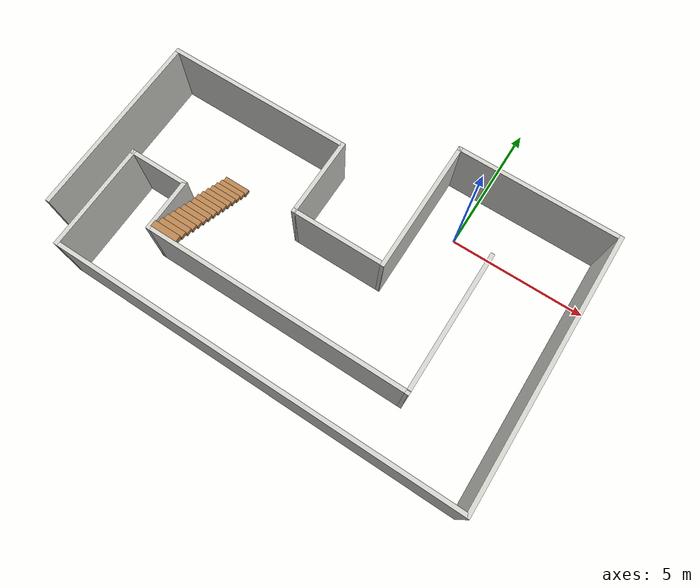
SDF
<?xml version='1.0'?>
<sdf version='1.7'>
  <model name='QD_world'>
    <pose>-3.49552 -3.0284 0 0 -0 0</pose>
    <link name='Stairs_2'>
      <visual name='Stairs_2_Visual_0'>
        <pose>-4.19457 0.527954 0.083333 0 -0 0</pose>
        <geometry>
          <box>
            <size>1 0.233333 0.166667</size>
          </box>
        </geometry>
        <material>
          <script>
            <uri>file://media/materials/scripts/gazebo.material</uri>
            <name>Gazebo/Wood</name>
          </script>
          <ambient>1 1 1 1</ambient>
        </material>
        <meta>
          <layer>0</layer>
        </meta>
      </visual>
      <collision name='Stairs_2_Collision_0'>
        <geometry>
          <box>
            <size>1 0.233333 0.166667</size>
          </box>
        </geometry>
        <pose>-4.19457 0.527954 0.083333 0 -0 0</pose>
      </collision>
      <visual name='Stairs_2_Visual_1'>
        <pose>-4.19457 0.294621 0.25 0 -0 0</pose>
        <geometry>
          <box>
            <size>1 0.233333 0.166667</size>
          </box>
        </geometry>
        <material>
          <script>
            <uri>file://media/materials/scripts/gazebo.material</uri>
            <name>Gazebo/Wood</name>
          </script>
          <ambient>1 1 1 1</ambient>
        </material>
        <meta>
          <layer>0</layer>
        </meta>
      </visual>
      <collision name='Stairs_2_Collision_1'>
        <geometry>
          <box>
            <size>1 0.233333 0.166667</size>
          </box>
        </geometry>
        <pose>-4.19457 0.294621 0.25 0 -0 0</pose>
      </collision>
      <visual name='Stairs_2_Visual_2'>
        <pose>-4.19457 0.061288 0.416667 0 -0 0</pose>
        <geometry>
          <box>
            <size>1 0.233333 0.166667</size>
          </box>
        </geometry>
        <material>
          <script>
            <uri>file://media/materials/scripts/gazebo.material</uri>
            <name>Gazebo/Wood</name>
          </script>
          <ambient>1 1 1 1</ambient>
        </material>
        <meta>
          <layer>0</layer>
        </meta>
      </visual>
      <collision name='Stairs_2_Collision_2'>
        <geometry>
          <box>
            <size>1 0.233333 0.166667</size>
          </box>
        </geometry>
        <pose>-4.19457 0.061288 0.416667 0 -0 0</pose>
      </collision>
      <visual name='Stairs_2_Visual_3'>
        <pose>-4.19457 -0.172045 0.583333 0 -0 0</pose>
        <geometry>
          <box>
            <size>1 0.233333 0.166667</size>
          </box>
        </geometry>
        <material>
          <script>
            <uri>file://media/materials/scripts/gazebo.material</uri>
            <name>Gazebo/Wood</name>
          </script>
          <ambient>1 1 1 1</ambient>
        </material>
        <meta>
          <layer>0</layer>
        </meta>
      </visual>
      <collision name='Stairs_2_Collision_3'>
        <geometry>
          <box>
            <size>1 0.233333 0.166667</size>
          </box>
        </geometry>
        <pose>-4.19457 -0.172045 0.583333 0 -0 0</pose>
      </collision>
      <visual name='Stairs_2_Visual_4'>
        <pose>-4.19457 -0.405379 0.75 0 -0 0</pose>
        <geometry>
          <box>
            <size>1 0.233333 0.166667</size>
          </box>
        </geometry>
        <material>
          <script>
            <uri>file://media/materials/scripts/gazebo.material</uri>
            <name>Gazebo/Wood</name>
          </script>
          <ambient>1 1 1 1</ambient>
        </material>
        <meta>
          <layer>0</layer>
        </meta>
      </visual>
      <collision name='Stairs_2_Collision_4'>
        <geometry>
          <box>
            <size>1 0.233333 0.166667</size>
          </box>
        </geometry>
        <pose>-4.19457 -0.405379 0.75 0 -0 0</pose>
      </collision>
      <visual name='Stairs_2_Visual_5'>
        <pose>-4.19457 -0.638712 0.916667 0 -0 0</pose>
        <geometry>
          <box>
            <size>1 0.233333 0.166667</size>
          </box>
        </geometry>
        <material>
          <script>
            <uri>file://media/materials/scripts/gazebo.material</uri>
            <name>Gazebo/Wood</name>
          </script>
          <ambient>1 1 1 1</ambient>
        </material>
        <meta>
          <layer>0</layer>
        </meta>
      </visual>
      <collision name='Stairs_2_Collision_5'>
        <geometry>
          <box>
            <size>1 0.233333 0.166667</size>
          </box>
        </geometry>
        <pose>-4.19457 -0.638712 0.916667 0 -0 0</pose>
      </collision>
      <visual name='Stairs_2_Visual_6'>
        <pose>-4.19457 -0.872046 1.08333 0 -0 0</pose>
        <geometry>
          <box>
            <size>1 0.233333 0.166667</size>
          </box>
        </geometry>
        <material>
          <script>
            <uri>file://media/materials/scripts/gazebo.material</uri>
            <name>Gazebo/Wood</name>
          </script>
          <ambient>1 1 1 1</ambient>
        </material>
        <meta>
          <layer>0</layer>
        </meta>
      </visual>
      <collision name='Stairs_2_Collision_6'>
        <geometry>
          <box>
            <size>1 0.233333 0.166667</size>
          </box>
        </geometry>
        <pose>-4.19457 -0.872046 1.08333 0 -0 0</pose>
      </collision>
      <visual name='Stairs_2_Visual_7'>
        <pose>-4.19457 -1.10538 1.25 0 -0 0</pose>
        <geometry>
          <box>
            <size>1 0.233333 0.166667</size>
          </box>
        </geometry>
        <material>
          <script>
            <uri>file://media/materials/scripts/gazebo.material</uri>
            <name>Gazebo/Wood</name>
          </script>
          <ambient>1 1 1 1</ambient>
        </material>
        <meta>
          <layer>0</layer>
        </meta>
      </visual>
      <collision name='Stairs_2_Collision_7'>
        <geometry>
          <box>
            <size>1 0.233333 0.166667</size>
          </box>
        </geometry>
        <pose>-4.19457 -1.10538 1.25 0 -0 0</pose>
      </collision>
      <visual name='Stairs_2_Visual_8'>
        <pose>-4.19457 -1.33871 1.41667 0 -0 0</pose>
        <geometry>
          <box>
            <size>1 0.233333 0.166667</size>
          </box>
        </geometry>
        <material>
          <script>
            <uri>file://media/materials/scripts/gazebo.material</uri>
            <name>Gazebo/Wood</name>
          </script>
          <ambient>1 1 1 1</ambient>
        </material>
        <meta>
          <layer>0</layer>
        </meta>
      </visual>
      <collision name='Stairs_2_Collision_8'>
        <geometry>
          <box>
            <size>1 0.233333 0.166667</size>
          </box>
        </geometry>
        <pose>-4.19457 -1.33871 1.41667 0 -0 0</pose>
      </collision>
      <visual name='Stairs_2_Visual_9'>
        <pose>-4.19457 -1.57205 1.58333 0 -0 0</pose>
        <geometry>
          <box>
            <size>1 0.233333 0.166667</size>
          </box>
        </geometry>
        <material>
          <script>
            <uri>file://media/materials/scripts/gazebo.material</uri>
            <name>Gazebo/Wood</name>
          </script>
          <ambient>1 1 1 1</ambient>
        </material>
        <meta>
          <layer>0</layer>
        </meta>
      </visual>
      <collision name='Stairs_2_Collision_9'>
        <geometry>
          <box>
            <size>1 0.233333 0.166667</size>
          </box>
        </geometry>
        <pose>-4.19457 -1.57205 1.58333 0 -0 0</pose>
      </collision>
      <visual name='Stairs_2_Visual_10'>
        <pose>-4.19457 -1.80538 1.75 0 -0 0</pose>
        <geometry>
          <box>
            <size>1 0.233333 0.166667</size>
          </box>
        </geometry>
        <material>
          <script>
            <uri>file://media/materials/scripts/gazebo.material</uri>
            <name>Gazebo/Wood</name>
          </script>
          <ambient>1 1 1 1</ambient>
        </material>
        <meta>
          <layer>0</layer>
        </meta>
      </visual>
      <collision name='Stairs_2_Collision_10'>
        <geometry>
          <box>
            <size>1 0.233333 0.166667</size>
          </box>
        </geometry>
        <pose>-4.19457 -1.80538 1.75 0 -0 0</pose>
      </collision>
      <visual name='Stairs_2_Visual_11'>
        <pose>-4.19457 -2.03871 1.91667 0 -0 0</pose>
        <geometry>
          <box>
            <size>1 0.233333 0.166667</size>
          </box>
        </geometry>
        <material>
          <script>
            <uri>file://media/materials/scripts/gazebo.material</uri>
            <name>Gazebo/Wood</name>
          </script>
          <ambient>1 1 1 1</ambient>
        </material>
        <meta>
          <layer>0</layer>
        </meta>
      </visual>
      <collision name='Stairs_2_Collision_11'>
        <geometry>
          <box>
            <size>1 0.233333 0.166667</size>
          </box>
        </geometry>
        <pose>-4.19457 -2.03871 1.91667 0 -0 0</pose>
      </collision>
      <visual name='Stairs_2_Visual_12'>
        <pose>-4.19457 -2.27204 2.08333 0 -0 0</pose>
        <geometry>
          <box>
            <size>1 0.233333 0.166667</size>
          </box>
        </geometry>
        <material>
          <script>
            <uri>file://media/materials/scripts/gazebo.material</uri>
            <name>Gazebo/Wood</name>
          </script>
          <ambient>1 1 1 1</ambient>
        </material>
        <meta>
          <layer>0</layer>
        </meta>
      </visual>
      <collision name='Stairs_2_Collision_12'>
        <geometry>
          <box>
            <size>1 0.233333 0.166667</size>
          </box>
        </geometry>
        <pose>-4.19457 -2.27204 2.08333 0 -0 0</pose>
      </collision>
      <visual name='Stairs_2_Visual_13'>
        <pose>-4.19457 -2.50538 2.25 0 -0 0</pose>
        <geometry>
          <box>
            <size>1 0.233333 0.166667</size>
          </box>
        </geometry>
        <material>
          <script>
            <uri>file://media/materials/scripts/gazebo.material</uri>
            <name>Gazebo/Wood</name>
          </script>
          <ambient>1 1 1 1</ambient>
        </material>
        <meta>
          <layer>0</layer>
        </meta>
      </visual>
      <collision name='Stairs_2_Collision_13'>
        <geometry>
          <box>
            <size>1 0.233333 0.166667</size>
          </box>
        </geometry>
        <pose>-4.19457 -2.50538 2.25 0 -0 0</pose>
      </collision>
      <visual name='Stairs_2_Visual_14'>
        <pose>-4.19457 -2.73871 2.41667 0 -0 0</pose>
        <geometry>
          <box>
            <size>1 0.233333 0.166667</size>
          </box>
        </geometry>
        <material>
          <script>
            <uri>file://media/materials/scripts/gazebo.material</uri>
            <name>Gazebo/Wood</name>
          </script>
          <ambient>1 1 1 1</ambient>
        </material>
        <meta>
          <layer>0</layer>
        </meta>
      </visual>
      <collision name='Stairs_2_Collision_14'>
        <geometry>
          <box>
            <size>1 0.233333 0.166667</size>
          </box>
        </geometry>
        <pose>-4.19457 -2.73871 2.41667 0 -0 0</pose>
      </collision>
    </link>
    <link name='Wall_17'>
      <collision name='Wall_17_Collision'>
        <geometry>
          <box>
            <size>7 0.15 2.5</size>
          </box>
        </geometry>
        <pose>0 0 1.25 0 -0 0</pose>
      </collision>
      <visual name='Wall_17_Visual'>
        <pose>0 0 1.25 0 -0 0</pose>
        <geometry>
          <box>
            <size>7 0.15 2.5</size>
          </box>
        </geometry>
        <material>
          <script>
            <uri>file://media/materials/scripts/gazebo.material</uri>
            <name>Gazebo/CeilingTiled</name>
          </script>
          <ambient>0.435294 0.796078 0.67451 1</ambient>
        </material>
        <meta>
          <layer>0</layer>
        </meta>
      </visual>
      <pose>-8.025 -0.5 0 0 -0 1.5708</pose>
    </link>
    <link name='Wall_18'>
      <collision name='Wall_18_Collision'>
        <geometry>
          <box>
            <size>7 0.15 2.5</size>
          </box>
        </geometry>
        <pose>0 0 1.25 0 -0 0</pose>
      </collision>
      <visual name='Wall_18_Visual'>
        <pose>0 0 1.25 0 -0 0</pose>
        <geometry>
          <box>
            <size>7 0.15 2.5</size>
          </box>
        </geometry>
        <material>
          <script>
            <uri>file://media/materials/scripts/gazebo.material</uri>
            <name>Gazebo/CeilingTiled</name>
          </script>
          <ambient>0.996078 0.47451 0.0196078 1</ambient>
        </material>
        <meta>
          <layer>0</layer>
        </meta>
      </visual>
      <pose>-4.6 2.925 0 0 -0 0</pose>
    </link>
    <link name='Wall_19'>
      <collision name='Wall_19_Collision'>
        <geometry>
          <box>
            <size>3 0.15 2.5</size>
          </box>
        </geometry>
        <pose>0 0 1.25 0 -0 0</pose>
      </collision>
      <visual name='Wall_19_Visual'>
        <pose>0 0 1.25 0 -0 0</pose>
        <geometry>
          <box>
            <size>3 0.15 2.5</size>
          </box>
        </geometry>
        <material>
          <script>
            <uri>file://media/materials/scripts/gazebo.material</uri>
            <name>Gazebo/CeilingTiled</name>
          </script>
          <ambient>0.435294 0.796078 0.67451 1</ambient>
        </material>
        <meta>
          <layer>0</layer>
        </meta>
      </visual>
      <pose>-1.175 1.5 0 0 -0 -1.5708</pose>
    </link>
    <link name='Wall_20'>
      <collision name='Wall_20_Collision'>
        <geometry>
          <box>
            <size>3.5 0.15 2.5</size>
          </box>
        </geometry>
        <pose>0 0 1.25 0 -0 0</pose>
      </collision>
      <visual name='Wall_20_Visual'>
        <pose>0 0 1.25 0 -0 0</pose>
        <geometry>
          <box>
            <size>3.5 0.15 2.5</size>
          </box>
        </geometry>
        <material>
          <script>
            <uri>file://media/materials/scripts/gazebo.material</uri>
            <name>Gazebo/CeilingTiled</name>
          </script>
          <ambient>0.996078 0.47451 0.0196078 1</ambient>
        </material>
        <meta>
          <layer>0</layer>
        </meta>
      </visual>
      <pose>0.5 0.075 0 0 -0 0</pose>
    </link>
    <link name='Wall_21'>
      <collision name='Wall_21_Collision'>
        <geometry>
          <box>
            <size>5 0.15 2.5</size>
          </box>
        </geometry>
        <pose>0 0 1.25 0 -0 0</pose>
      </collision>
      <visual name='Wall_21_Visual'>
        <pose>0 0 1.25 0 -0 0</pose>
        <geometry>
          <box>
            <size>5 0.15 2.5</size>
          </box>
        </geometry>
        <material>
          <script>
            <uri>file://media/materials/scripts/gazebo.material</uri>
            <name>Gazebo/CeilingTiled</name>
          </script>
          <ambient>0.435294 0.796078 0.67451 1</ambient>
        </material>
        <meta>
          <layer>0</layer>
        </meta>
      </visual>
      <pose>2.175 2.5 0 0 -0 1.5708</pose>
    </link>
    <link name='Wall_22'>
      <collision name='Wall_22_Collision'>
        <geometry>
          <box>
            <size>6 0.15 2.5</size>
          </box>
        </geometry>
        <pose>0 0 1.25 0 -0 0</pose>
      </collision>
      <visual name='Wall_22_Visual'>
        <pose>0 0 1.25 0 -0 0</pose>
        <geometry>
          <box>
            <size>6 0.15 2.5</size>
          </box>
        </geometry>
        <material>
          <script>
            <uri>file://media/materials/scripts/gazebo.material</uri>
            <name>Gazebo/CeilingTiled</name>
          </script>
          <ambient>0.996078 0.47451 0.0196078 1</ambient>
        </material>
        <meta>
          <layer>0</layer>
        </meta>
      </visual>
      <pose>5.1 4.925 0 0 -0 0</pose>
    </link>
    <link name='Wall_23'>
      <collision name='Wall_23_Collision'>
        <geometry>
          <box>
            <size>10 0.15 2.5</size>
          </box>
        </geometry>
        <pose>0 0 1.25 0 -0 0</pose>
      </collision>
      <visual name='Wall_23_Visual'>
        <pose>0 0 1.25 0 -0 0</pose>
        <geometry>
          <box>
            <size>10 0.15 2.5</size>
          </box>
        </geometry>
        <material>
          <script>
            <uri>file://media/materials/scripts/gazebo.material</uri>
            <name>Gazebo/CeilingTiled</name>
          </script>
          <ambient>0.435294 0.796078 0.67451 1</ambient>
        </material>
        <meta>
          <layer>0</layer>
        </meta>
      </visual>
      <pose>8.025 -0 0 0 -0 -1.5708</pose>
    </link>
    <link name='Wall_24'>
      <collision name='Wall_24_Collision'>
        <geometry>
          <box>
            <size>15 0.15 2.5</size>
          </box>
        </geometry>
        <pose>0 0 1.25 0 -0 0</pose>
      </collision>
      <visual name='Wall_24_Visual'>
        <pose>0 0 1.25 0 -0 0</pose>
        <geometry>
          <box>
            <size>15 0.15 2.5</size>
          </box>
        </geometry>
        <material>
          <script>
            <uri>file://media/materials/scripts/gazebo.material</uri>
            <name>Gazebo/CeilingTiled</name>
          </script>
          <ambient>0.996078 0.47451 0.0196078 1</ambient>
        </material>
        <meta>
          <layer>0</layer>
        </meta>
      </visual>
      <pose>0.6 -4.925 0 0 -0 3.14159</pose>
    </link>
    <link name='Wall_25'>
      <collision name='Wall_25_Collision'>
        <geometry>
          <box>
            <size>4 0.15 2.5</size>
          </box>
        </geometry>
        <pose>0 0 1.25 0 -0 0</pose>
      </collision>
      <visual name='Wall_25_Visual'>
        <pose>0 0 1.25 0 -0 0</pose>
        <geometry>
          <box>
            <size>4 0.15 2.5</size>
          </box>
        </geometry>
        <material>
          <script>
            <uri>file://media/materials/scripts/gazebo.material</uri>
            <name>Gazebo/CeilingTiled</name>
          </script>
          <ambient>0.435294 0.796078 0.67451 1</ambient>
        </material>
        <meta>
          <layer>0</layer>
        </meta>
      </visual>
      <pose>-6.825 -3 0 0 -0 1.5708</pose>
    </link>
    <link name='Wall_26'>
      <collision name='Wall_26_Collision'>
        <geometry>
          <box>
            <size>2.25 0.15 2.5</size>
          </box>
        </geometry>
        <pose>0 0 1.25 0 -0 0</pose>
      </collision>
      <visual name='Wall_26_Visual'>
        <pose>0 0 1.25 0 -0 0</pose>
        <geometry>
          <box>
            <size>2.25 0.15 2.5</size>
          </box>
        </geometry>
        <material>
          <script>
            <uri>file://media/materials/scripts/gazebo.material</uri>
            <name>Gazebo/CeilingTiled</name>
          </script>
          <ambient>0.996078 0.47451 0.0196078 1</ambient>
        </material>
        <meta>
          <layer>0</layer>
        </meta>
      </visual>
      <pose>-5.775 -1.075 0 0 -0 0</pose>
    </link>
    <link name='Wall_27'>
      <collision name='Wall_27_Collision'>
        <geometry>
          <box>
            <size>2 0.15 2.5</size>
          </box>
        </geometry>
        <pose>0 0 1.25 0 -0 0</pose>
      </collision>
      <visual name='Wall_27_Visual'>
        <pose>0 0 1.25 0 -0 0</pose>
        <geometry>
          <box>
            <size>2 0.15 2.5</size>
          </box>
        </geometry>
        <material>
          <script>
            <uri>file://media/materials/scripts/gazebo.material</uri>
            <name>Gazebo/CeilingTiled</name>
          </script>
          <ambient>0.435294 0.796078 0.67451 1</ambient>
        </material>
        <meta>
          <layer>0</layer>
        </meta>
      </visual>
      <pose>-4.725 -2 0 0 -0 -1.5708</pose>
    </link>
    <link name='Wall_28'>
      <collision name='Wall_28_Collision'>
        <geometry>
          <box>
            <size>9.75 0.15 2.5</size>
          </box>
        </geometry>
        <pose>0 0 1.25 0 -0 0</pose>
      </collision>
      <visual name='Wall_28_Visual'>
        <pose>0 0 1.25 0 -0 0</pose>
        <geometry>
          <box>
            <size>9.75 0.15 2.5</size>
          </box>
        </geometry>
        <material>
          <script>
            <uri>file://media/materials/scripts/gazebo.material</uri>
            <name>Gazebo/CeilingTiled</name>
          </script>
          <ambient>0.996078 0.47451 0.0196078 1</ambient>
        </material>
        <meta>
          <layer>0</layer>
        </meta>
      </visual>
      <pose>0.075 -2.925 0 0 -0 0</pose>
    </link>
    <link name='Wall_29'>
      <collision name='Wall_29_Collision'>
        <geometry>
          <box>
            <size>5.25 0.15 2.5</size>
          </box>
        </geometry>
        <pose>0 0 1.25 0 -0 0</pose>
      </collision>
      <visual name='Wall_29_Visual'>
        <pose>0 0 1.25 0 -0 0</pose>
        <geometry>
          <box>
            <size>5.25 0.15 2.5</size>
          </box>
        </geometry>
        <material>
          <script>
            <uri>file://media/materials/scripts/gazebo.material</uri>
            <name>Gazebo/CeilingTiled</name>
          </script>
          <ambient>0.435294 0.796078 0.67451 1</ambient>
        </material>
        <meta>
          <layer>0</layer>
        </meta>
      </visual>
      <pose>4.875 -0.375 0 0 -0 1.5708</pose>
    </link>
    <static>1</static>
  </model>
</sdf>
